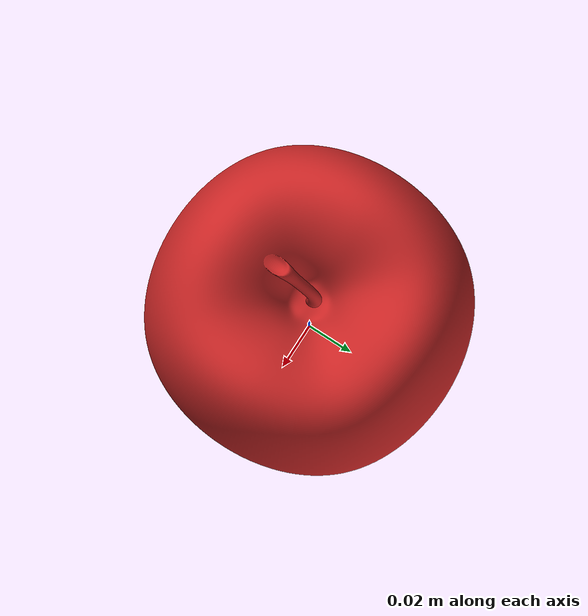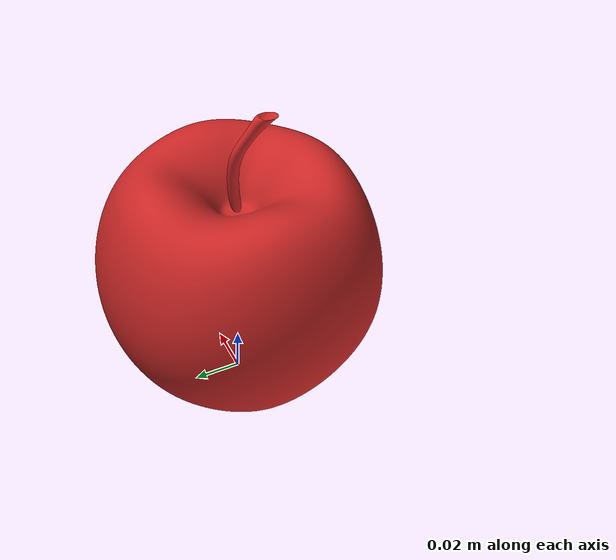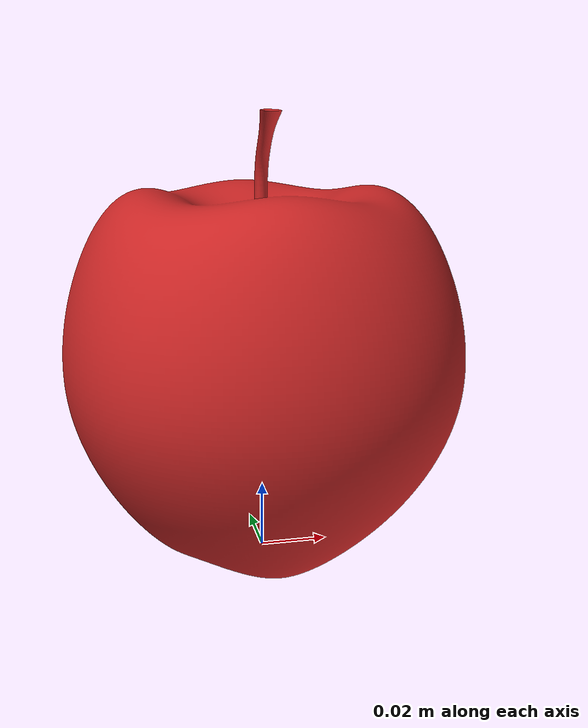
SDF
<?xml version='1.0' ?>
<sdf version='1.6'>
    <model name='red_apple'>
        <static>false</static>
        <link name='apple_link'>
            <inertial>
                <mass>0.1</mass>
                <inertia>
                    <ixx>0.0001</ixx>
                    <ixy>0</ixy>
                    <ixz>0</ixz>
                    <iyy>0.0001</iyy>
                    <iyz>0</iyz>
                    <izz>0.0001</izz>
                </inertia>
            </inertial>
            <visual name='red_apple'>
                <geometry>
                    <mesh>
                        <uri>model://others/meshes/apple.stl</uri>
                    </mesh>
                </geometry>
                <material>
                    <script>
                        <uri>file://media/materials/scripts/gazebo.material</uri>
                        <name>Gazebo/Red</name>
                    </script>
                </material>
            </visual>
            <collision name='red_apple'>
                <geometry>
                    <mesh>
                        <uri>model://others/meshes/apple.stl</uri>
                    </mesh>
                </geometry>
            </collision>
        </link>
    </model>
</sdf>
